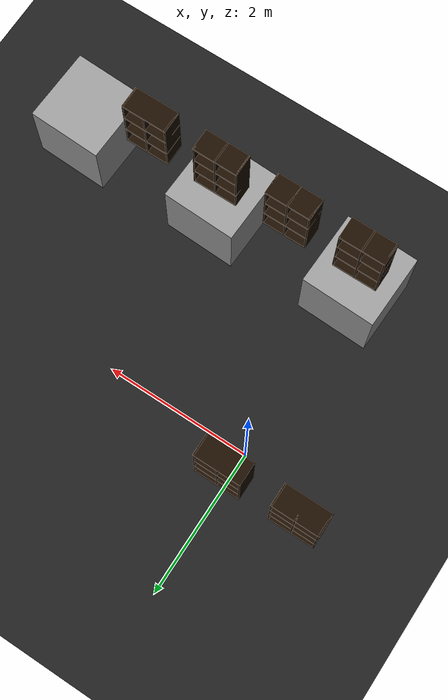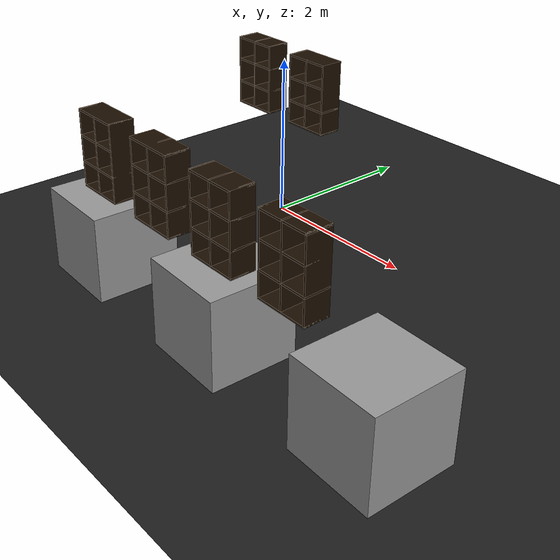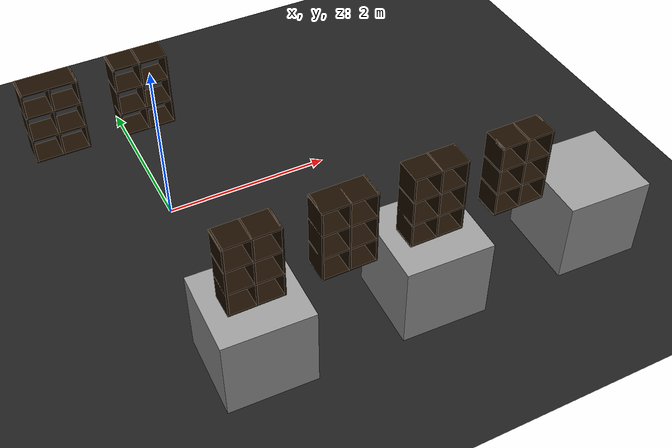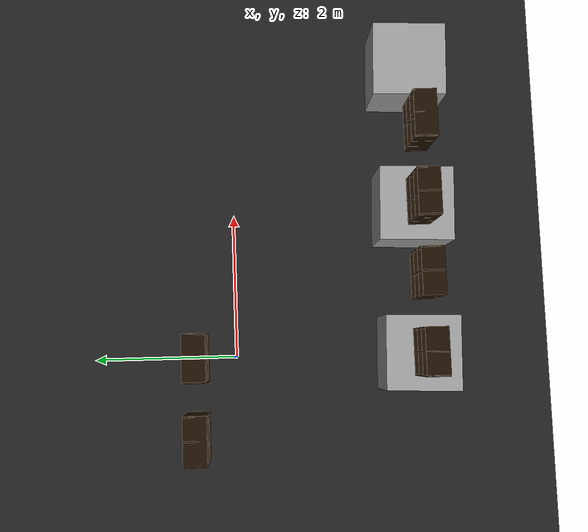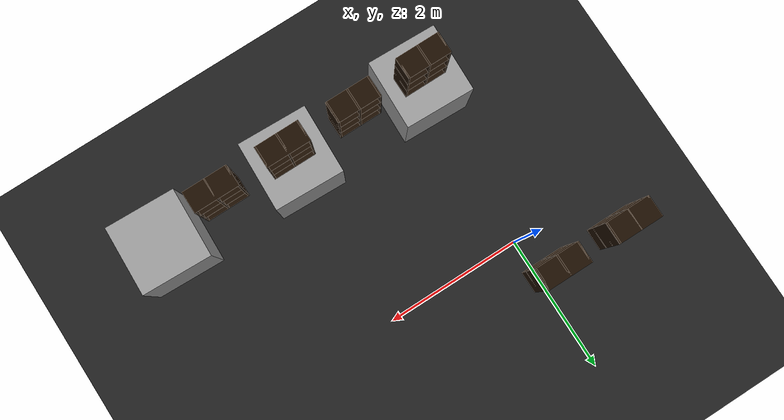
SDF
<sdf version="1.7">
 <world name="default">
  <model name="ground_plane">
   <static>1</static>
   <link name="link">
    <collision name="collision">
     <geometry><plane><normal>0 0 1</normal><size>100 100</size></plane></geometry>
     <surface><friction><ode><mu>100</mu><mu2>50</mu2></ode></friction></surface>
    </collision>
    <visual name="visual">
     <cast_shadows>0</cast_shadows>
     <geometry><plane><normal>0 0 1</normal><size>100 100</size></plane></geometry>
     <material>
      <script><uri>file://media/materials/scripts/gazebo.material</uri><name>Gazebo/BlackTransparent</name></script>
     </material>
    </visual>
   </link>
  </model>
  <model name="unit_box_24">
   <pose>-0.012698 -2.48702 0.5 0 0 -0.031078</pose>
   <link name="link">
    <inertial>
     <mass>1</mass>
     <inertia>
      <ixx>0.166667</ixx>
      <ixy>0</ixy>
      <ixz>0</ixz>
      <iyy>0.166667</iyy>
      <iyz>0</iyz>
      <izz>0.166667</izz>
     </inertia>
    </inertial>
    <collision name="collision"><geometry><box><size>1 1 1</size></box></geometry></collision>
    <visual name="visual">
     <geometry><box><size>1 1 1</size></box></geometry>
     <material>
      <script><name>Gazebo/Grey</name><uri>file://media/materials/scripts/gazebo.material</uri></script>
     </material>
    </visual>
   </link>
  </model>
  <model name="unit_box_25">
   <pose>1.99148 -2.49024 0.5 0 0 -0.034578</pose>
   <link name="link">
    <inertial>
     <mass>1</mass>
     <inertia>
      <ixx>0.166667</ixx>
      <ixy>0</ixy>
      <ixz>0</ixz>
      <iyy>0.166667</iyy>
      <iyz>0</iyz>
      <izz>0.166667</izz>
     </inertia>
    </inertial>
    <collision name="collision"><geometry><box><size>1 1 1</size></box></geometry></collision>
    <visual name="visual">
     <geometry><box><size>1 1 1</size></box></geometry>
     <material>
      <script><name>Gazebo/Grey</name><uri>file://media/materials/scripts/gazebo.material</uri></script>
     </material>
    </visual>
   </link>
  </model>
  <model name="unit_box_26">
   <pose>3.99339 -2.48181 0.5 0 0 -0.034708</pose>
   <link name="link">
    <inertial>
     <mass>1</mass>
     <inertia>
      <ixx>0.166667</ixx>
      <ixy>0</ixy>
      <ixz>0</ixz>
      <iyy>0.166667</iyy>
      <iyz>0</iyz>
      <izz>0.166667</izz>
     </inertia>
    </inertial>
    <collision name="collision"><geometry><box><size>1 1 1</size></box></geometry></collision>
    <visual name="visual">
     <geometry><box><size>1 1 1</size></box></geometry>
     <material>
      <script><name>Gazebo/Grey</name><uri>file://media/materials/scripts/gazebo.material</uri></script>
     </material>
    </visual>
   </link>
  </model>
  <model name="6_Cube_StorageE_clone_34">
   <link name="Wall_0">
    <pose>0 0 0.01 0 -0 0</pose>
    <inertial>
     <mass>1.6201</mass>
     <inertia><ixx>0.0119</ixx><iyy>0.0631</iyy><izz>0.0513</izz><ixy>0</ixy><ixz>0</ixz><iyz>0</iyz></inertia>
    </inertial>
    <collision name="Wall_0_Collision"><geometry><box><size>0.616 0.296 0.02</size></box></geometry></collision>
    <visual name="Wall_0_Visual">
     <geometry><box><size>0.616 0.296 0.02</size></box></geometry>
     <material>
      <script><uri>file://media/materials/scripts/gazebo.material</uri><name>Gazebo/Grey</name></script>
      <ambient>0.105882 0.0509804 0 1</ambient>
     </material>
    </visual>
   </link>
   <joint name="0_2" type="fixed">
    <pose>-0.308 0 0 0 -0 0</pose>
    <parent>Wall_2</parent>
    <child>Wall_0</child>
    <axis><xyz>1 0 0</xyz><limit><lower>-1e+16</lower><upper>1e+16</upper></limit></axis>
   </joint>
   <joint name="0_12" type="fixed">
    <parent>Wall_12</parent>
    <child>Wall_0</child>
    <axis><xyz>0 0 1</xyz><limit><lower>-1e+16</lower><upper>1e+16</upper></limit></axis>
   </joint>
   <joint name="0_4" type="fixed">
    <pose>0.308 0 0 0 -0 0</pose>
    <parent>Wall_4</parent>
    <child>Wall_0</child>
    <axis><xyz>1 0 0</xyz><limit><lower>-1e+16</lower><upper>1e+16</upper></limit></axis>
   </joint>
   <link name="Wall_10">
    <pose>0 0 0.61 0 -0 0</pose>
    <inertial>
     <mass>1.6201</mass>
     <inertia><ixx>0.0119</ixx><iyy>0.0631</iyy><izz>0.0513</izz><ixy>0</ixy><ixz>0</ixz><iyz>0</iyz></inertia>
    </inertial>
    <collision name="Wall_10_Collision"><geometry><box><size>0.616 0.296 0.02</size></box></geometry></collision>
    <visual name="Wall_10_Visual">
     <geometry><box><size>0.616 0.296 0.02</size></box></geometry>
     <material>
      <script><uri>file://media/materials/scripts/gazebo.material</uri><name>Gazebo/Grey</name></script>
      <ambient>0.105882 0.0509804 0 1</ambient>
     </material>
    </visual>
   </link>
   <joint name="10_2" type="fixed">
    <pose>-0.308 0 0 0 -0 0</pose>
    <parent>Wall_2</parent>
    <child>Wall_10</child>
    <axis><xyz>1 0 0</xyz><limit><lower>-1e+16</lower><upper>1e+16</upper></limit></axis>
   </joint>
   <joint name="10_12" type="fixed">
    <parent>Wall_12</parent>
    <child>Wall_10</child>
    <axis><xyz>0 0 1</xyz><limit><lower>-1e+16</lower><upper>1e+16</upper></limit></axis>
   </joint>
   <joint name="10_4" type="fixed">
    <pose>0.308 0 0 0 -0 0</pose>
    <parent>Wall_4</parent>
    <child>Wall_10</child>
    <axis><xyz>1 0 0</xyz><limit><lower>-1e+16</lower><upper>1e+16</upper></limit></axis>
   </joint>
   <link name="Wall_12">
    <pose>0 0 0.4575 0 -0 0</pose>
    <inertial>
     <mass>2.4065</mass>
     <inertia><ixx>0.0177</ixx><iyy>0.1855</iyy><izz>0.168</izz><ixy>0</ixy><ixz>0</ixz><iyz>0</iyz></inertia>
    </inertial>
    <collision name="Wall_12_Collision"><geometry><box><size>0.02 0.296 0.915</size></box></geometry></collision>
    <visual name="Wall_12_Visual">
     <geometry><box><size>0.02 0.296 0.915</size></box></geometry>
     <material>
      <script><uri>file://media/materials/scripts/gazebo.material</uri><name>Gazebo/Grey</name></script>
      <ambient>0.105882 0.0509804 0 1</ambient>
     </material>
    </visual>
   </link>
   <link name="Wall_2">
    <pose>-0.298 0 0.4575 0 -0 0</pose>
    <inertial>
     <mass>2.4065</mass>
     <inertia><ixx>0.0177</ixx><iyy>0.1855</iyy><izz>0.168</izz><ixy>0</ixy><ixz>0</ixz><iyz>0</iyz></inertia>
    </inertial>
    <collision name="Wall_2_Collision"><geometry><box><size>0.02 0.296 0.915</size></box></geometry></collision>
    <visual name="Wall_2_Visual">
     <geometry><box><size>0.02 0.296 0.915</size></box></geometry>
     <material>
      <script><uri>file://media/materials/scripts/gazebo.material</uri><name>Gazebo/Grey</name></script>
      <ambient>0.105882 0.0509804 0 1</ambient>
     </material>
    </visual>
   </link>
   <link name="Wall_4">
    <pose>0.298 0 0.4575 0 -0 0</pose>
    <inertial>
     <mass>2.4065</mass>
     <inertia><ixx>0.0177</ixx><iyy>0.1855</iyy><izz>0.168</izz><ixy>0</ixy><ixz>0</ixz><iyz>0</iyz></inertia>
    </inertial>
    <collision name="Wall_4_Collision"><geometry><box><size>0.02 0.296 0.915</size></box></geometry></collision>
    <visual name="Wall_4_Visual">
     <geometry><box><size>0.02 0.296 0.915</size></box></geometry>
     <material>
      <script><uri>file://media/materials/scripts/gazebo.material</uri><name>Gazebo/Grey</name></script>
      <ambient>0.105882 0.0509804 0 1</ambient>
     </material>
    </visual>
   </link>
   <link name="Wall_6">
    <pose>0 0 0.905 0 -0 0</pose>
    <inertial>
     <mass>1.6201</mass>
     <inertia><ixx>0.0119</ixx><iyy>0.0631</iyy><izz>0.0513</izz><ixy>0</ixy><ixz>0</ixz><iyz>0</iyz></inertia>
    </inertial>
    <collision name="Wall_6_Collision"><geometry><box><size>0.616 0.296 0.02</size></box></geometry></collision>
    <visual name="Wall_6_Visual">
     <geometry><box><size>0.616 0.296 0.02</size></box></geometry>
     <material>
      <script><uri>file://media/materials/scripts/gazebo.material</uri><name>Gazebo/Grey</name></script>
      <ambient>0.105882 0.0509804 0 1</ambient>
     </material>
    </visual>
   </link>
   <joint name="6_2" type="fixed">
    <pose>-0.308 0 0 0 -0 0</pose>
    <parent>Wall_2</parent>
    <child>Wall_6</child>
    <axis><xyz>2 0 0</xyz><limit><lower>-1e+16</lower><upper>1e+16</upper></limit></axis>
   </joint>
   <joint name="6_12" type="fixed">
    <parent>Wall_12</parent>
    <child>Wall_6</child>
    <axis><xyz>0 0 1</xyz><limit><lower>-1e+16</lower><upper>1e+16</upper></limit></axis>
   </joint>
   <joint name="6_4" type="fixed">
    <pose>0.308 0 0 0 -0 0</pose>
    <parent>Wall_4</parent>
    <child>Wall_6</child>
    <axis><xyz>1 0 0</xyz><limit><lower>-1e+16</lower><upper>1e+16</upper></limit></axis>
   </joint>
   <link name="Wall_8">
    <pose>0 0 0.305 0 -0 0</pose>
    <inertial>
     <mass>1.6201</mass>
     <inertia><ixx>0.0119</ixx><iyy>0.0631</iyy><izz>0.0513</izz><ixy>0</ixy><ixz>0</ixz><iyz>0</iyz></inertia>
    </inertial>
    <collision name="Wall_8_Collision"><geometry><box><size>0.616 0.296 0.02</size></box></geometry></collision>
    <visual name="Wall_8_Visual">
     <geometry><box><size>0.616 0.296 0.02</size></box></geometry>
     <material>
      <script><uri>file://media/materials/scripts/gazebo.material</uri><name>Gazebo/Grey</name></script>
      <ambient>0.105882 0.0509804 0 1</ambient>
     </material>
    </visual>
   </link>
   <joint name="8_2" type="fixed">
    <pose>-0.308 0 0 0 -0 0</pose>
    <parent>Wall_2</parent>
    <child>Wall_8</child>
    <axis><xyz>1 0 0</xyz><limit><lower>-1e+16</lower><upper>1e+16</upper></limit></axis>
   </joint>
   <joint name="8_12" type="fixed">
    <parent>Wall_12</parent>
    <child>Wall_8</child>
    <axis><xyz>0 0 1</xyz><limit><lower>-1e+16</lower><upper>1e+16</upper></limit></axis>
   </joint>
   <joint name="8_4" type="fixed">
    <pose>0.308 0 0 0 -0 0</pose>
    <parent>Wall_4</parent>
    <child>Wall_8</child>
    <axis><xyz>1 0 0</xyz><limit><lower>-1e+16</lower><upper>1e+16</upper></limit></axis>
   </joint>
   <static>1</static>
   <pose>-1 0.5 1.01 0 -0 0</pose>
  </model>
  <model name="6_Cube_StorageE_clone_35">
   <link name="Wall_0">
    <pose>0 0 0.01 0 -0 0</pose>
    <inertial>
     <mass>1.6201</mass>
     <inertia><ixx>0.0119</ixx><iyy>0.0631</iyy><izz>0.0513</izz><ixy>0</ixy><ixz>0</ixz><iyz>0</iyz></inertia>
    </inertial>
    <collision name="Wall_0_Collision"><geometry><box><size>0.616 0.296 0.02</size></box></geometry></collision>
    <visual name="Wall_0_Visual">
     <geometry><box><size>0.616 0.296 0.02</size></box></geometry>
     <material>
      <script><uri>file://media/materials/scripts/gazebo.material</uri><name>Gazebo/Grey</name></script>
      <ambient>0.105882 0.0509804 0 1</ambient>
     </material>
    </visual>
   </link>
   <joint name="0_2" type="fixed">
    <pose>-0.308 0 0 0 -0 0</pose>
    <parent>Wall_2</parent>
    <child>Wall_0</child>
    <axis><xyz>1 0 0</xyz><limit><lower>-1e+16</lower><upper>1e+16</upper></limit></axis>
   </joint>
   <joint name="0_12" type="fixed">
    <parent>Wall_12</parent>
    <child>Wall_0</child>
    <axis><xyz>0 0 1</xyz><limit><lower>-1e+16</lower><upper>1e+16</upper></limit></axis>
   </joint>
   <joint name="0_4" type="fixed">
    <pose>0.308 0 0 0 -0 0</pose>
    <parent>Wall_4</parent>
    <child>Wall_0</child>
    <axis><xyz>1 0 0</xyz><limit><lower>-1e+16</lower><upper>1e+16</upper></limit></axis>
   </joint>
   <link name="Wall_10">
    <pose>0 0 0.61 0 -0 0</pose>
    <inertial>
     <mass>1.6201</mass>
     <inertia><ixx>0.0119</ixx><iyy>0.0631</iyy><izz>0.0513</izz><ixy>0</ixy><ixz>0</ixz><iyz>0</iyz></inertia>
    </inertial>
    <collision name="Wall_10_Collision"><geometry><box><size>0.616 0.296 0.02</size></box></geometry></collision>
    <visual name="Wall_10_Visual">
     <geometry><box><size>0.616 0.296 0.02</size></box></geometry>
     <material>
      <script><uri>file://media/materials/scripts/gazebo.material</uri><name>Gazebo/Grey</name></script>
      <ambient>0.105882 0.0509804 0 1</ambient>
     </material>
    </visual>
   </link>
   <joint name="10_2" type="fixed">
    <pose>-0.308 0 0 0 -0 0</pose>
    <parent>Wall_2</parent>
    <child>Wall_10</child>
    <axis><xyz>1 0 0</xyz><limit><lower>-1e+16</lower><upper>1e+16</upper></limit></axis>
   </joint>
   <joint name="10_12" type="fixed">
    <parent>Wall_12</parent>
    <child>Wall_10</child>
    <axis><xyz>0 0 1</xyz><limit><lower>-1e+16</lower><upper>1e+16</upper></limit></axis>
   </joint>
   <joint name="10_4" type="fixed">
    <pose>0.308 0 0 0 -0 0</pose>
    <parent>Wall_4</parent>
    <child>Wall_10</child>
    <axis><xyz>1 0 0</xyz><limit><lower>-1e+16</lower><upper>1e+16</upper></limit></axis>
   </joint>
   <link name="Wall_12">
    <pose>0 0 0.4575 0 -0 0</pose>
    <inertial>
     <mass>2.4065</mass>
     <inertia><ixx>0.0177</ixx><iyy>0.1855</iyy><izz>0.168</izz><ixy>0</ixy><ixz>0</ixz><iyz>0</iyz></inertia>
    </inertial>
    <collision name="Wall_12_Collision"><geometry><box><size>0.02 0.296 0.915</size></box></geometry></collision>
    <visual name="Wall_12_Visual">
     <geometry><box><size>0.02 0.296 0.915</size></box></geometry>
     <material>
      <script><uri>file://media/materials/scripts/gazebo.material</uri><name>Gazebo/Grey</name></script>
      <ambient>0.105882 0.0509804 0 1</ambient>
     </material>
    </visual>
   </link>
   <link name="Wall_2">
    <pose>-0.298 0 0.4575 0 -0 0</pose>
    <inertial>
     <mass>2.4065</mass>
     <inertia><ixx>0.0177</ixx><iyy>0.1855</iyy><izz>0.168</izz><ixy>0</ixy><ixz>0</ixz><iyz>0</iyz></inertia>
    </inertial>
    <collision name="Wall_2_Collision"><geometry><box><size>0.02 0.296 0.915</size></box></geometry></collision>
    <visual name="Wall_2_Visual">
     <geometry><box><size>0.02 0.296 0.915</size></box></geometry>
     <material>
      <script><uri>file://media/materials/scripts/gazebo.material</uri><name>Gazebo/Grey</name></script>
      <ambient>0.105882 0.0509804 0 1</ambient>
     </material>
    </visual>
   </link>
   <link name="Wall_4">
    <pose>0.298 0 0.4575 0 -0 0</pose>
    <inertial>
     <mass>2.4065</mass>
     <inertia><ixx>0.0177</ixx><iyy>0.1855</iyy><izz>0.168</izz><ixy>0</ixy><ixz>0</ixz><iyz>0</iyz></inertia>
    </inertial>
    <collision name="Wall_4_Collision"><geometry><box><size>0.02 0.296 0.915</size></box></geometry></collision>
    <visual name="Wall_4_Visual">
     <geometry><box><size>0.02 0.296 0.915</size></box></geometry>
     <material>
      <script><uri>file://media/materials/scripts/gazebo.material</uri><name>Gazebo/Grey</name></script>
      <ambient>0.105882 0.0509804 0 1</ambient>
     </material>
    </visual>
   </link>
   <link name="Wall_6">
    <pose>0 0 0.905 0 -0 0</pose>
    <inertial>
     <mass>1.6201</mass>
     <inertia><ixx>0.0119</ixx><iyy>0.0631</iyy><izz>0.0513</izz><ixy>0</ixy><ixz>0</ixz><iyz>0</iyz></inertia>
    </inertial>
    <collision name="Wall_6_Collision"><geometry><box><size>0.616 0.296 0.02</size></box></geometry></collision>
    <visual name="Wall_6_Visual">
     <geometry><box><size>0.616 0.296 0.02</size></box></geometry>
     <material>
      <script><uri>file://media/materials/scripts/gazebo.material</uri><name>Gazebo/Grey</name></script>
      <ambient>0.105882 0.0509804 0 1</ambient>
     </material>
    </visual>
   </link>
   <joint name="6_2" type="fixed">
    <pose>-0.308 0 0 0 -0 0</pose>
    <parent>Wall_2</parent>
    <child>Wall_6</child>
    <axis><xyz>2 0 0</xyz><limit><lower>-1e+16</lower><upper>1e+16</upper></limit></axis>
   </joint>
   <joint name="6_12" type="fixed">
    <parent>Wall_12</parent>
    <child>Wall_6</child>
    <axis><xyz>0 0 1</xyz><limit><lower>-1e+16</lower><upper>1e+16</upper></limit></axis>
   </joint>
   <joint name="6_4" type="fixed">
    <pose>0.308 0 0 0 -0 0</pose>
    <parent>Wall_4</parent>
    <child>Wall_6</child>
    <axis><xyz>1 0 0</xyz><limit><lower>-1e+16</lower><upper>1e+16</upper></limit></axis>
   </joint>
   <link name="Wall_8">
    <pose>0 0 0.305 0 -0 0</pose>
    <inertial>
     <mass>1.6201</mass>
     <inertia><ixx>0.0119</ixx><iyy>0.0631</iyy><izz>0.0513</izz><ixy>0</ixy><ixz>0</ixz><iyz>0</iyz></inertia>
    </inertial>
    <collision name="Wall_8_Collision"><geometry><box><size>0.616 0.296 0.02</size></box></geometry></collision>
    <visual name="Wall_8_Visual">
     <geometry><box><size>0.616 0.296 0.02</size></box></geometry>
     <material>
      <script><uri>file://media/materials/scripts/gazebo.material</uri><name>Gazebo/Grey</name></script>
      <ambient>0.105882 0.0509804 0 1</ambient>
     </material>
    </visual>
   </link>
   <joint name="8_2" type="fixed">
    <pose>-0.308 0 0 0 -0 0</pose>
    <parent>Wall_2</parent>
    <child>Wall_8</child>
    <axis><xyz>1 0 0</xyz><limit><lower>-1e+16</lower><upper>1e+16</upper></limit></axis>
   </joint>
   <joint name="8_12" type="fixed">
    <parent>Wall_12</parent>
    <child>Wall_8</child>
    <axis><xyz>0 0 1</xyz><limit><lower>-1e+16</lower><upper>1e+16</upper></limit></axis>
   </joint>
   <joint name="8_4" type="fixed">
    <pose>0.308 0 0 0 -0 0</pose>
    <parent>Wall_4</parent>
    <child>Wall_8</child>
    <axis><xyz>1 0 0</xyz><limit><lower>-1e+16</lower><upper>1e+16</upper></limit></axis>
   </joint>
   <static>1</static>
   <pose>0 0.5 1.01 0 -0 0</pose>
  </model>
  <model name="6_Cube_StorageE_clone_47">
   <link name="Wall_0">
    <pose>0 0 0.01 0 -0 0</pose>
    <inertial>
     <mass>1.6201</mass>
     <inertia><ixx>0.0119</ixx><iyy>0.0631</iyy><izz>0.0513</izz><ixy>0</ixy><ixz>0</ixz><iyz>0</iyz></inertia>
    </inertial>
    <collision name="Wall_0_Collision"><geometry><box><size>0.616 0.296 0.02</size></box></geometry></collision>
    <visual name="Wall_0_Visual">
     <geometry><box><size>0.616 0.296 0.02</size></box></geometry>
     <material>
      <script><uri>file://media/materials/scripts/gazebo.material</uri><name>Gazebo/Grey</name></script>
      <ambient>0.105882 0.0509804 0 1</ambient>
     </material>
    </visual>
   </link>
   <joint name="0_2" type="fixed">
    <pose>-0.308 0 0 0 -0 0</pose>
    <parent>Wall_2</parent>
    <child>Wall_0</child>
    <axis><xyz>1 0 0</xyz><limit><lower>-1e+16</lower><upper>1e+16</upper></limit></axis>
   </joint>
   <joint name="0_12" type="fixed">
    <parent>Wall_12</parent>
    <child>Wall_0</child>
    <axis><xyz>0 0 1</xyz><limit><lower>-1e+16</lower><upper>1e+16</upper></limit></axis>
   </joint>
   <joint name="0_4" type="fixed">
    <pose>0.308 0 0 0 -0 0</pose>
    <parent>Wall_4</parent>
    <child>Wall_0</child>
    <axis><xyz>1 0 0</xyz><limit><lower>-1e+16</lower><upper>1e+16</upper></limit></axis>
   </joint>
   <link name="Wall_10">
    <pose>0 0 0.61 0 -0 0</pose>
    <inertial>
     <mass>1.6201</mass>
     <inertia><ixx>0.0119</ixx><iyy>0.0631</iyy><izz>0.0513</izz><ixy>0</ixy><ixz>0</ixz><iyz>0</iyz></inertia>
    </inertial>
    <collision name="Wall_10_Collision"><geometry><box><size>0.616 0.296 0.02</size></box></geometry></collision>
    <visual name="Wall_10_Visual">
     <geometry><box><size>0.616 0.296 0.02</size></box></geometry>
     <material>
      <script><uri>file://media/materials/scripts/gazebo.material</uri><name>Gazebo/Grey</name></script>
      <ambient>0.105882 0.0509804 0 1</ambient>
     </material>
    </visual>
   </link>
   <joint name="10_2" type="fixed">
    <pose>-0.308 0 0 0 -0 0</pose>
    <parent>Wall_2</parent>
    <child>Wall_10</child>
    <axis><xyz>1 0 0</xyz><limit><lower>-1e+16</lower><upper>1e+16</upper></limit></axis>
   </joint>
   <joint name="10_12" type="fixed">
    <parent>Wall_12</parent>
    <child>Wall_10</child>
    <axis><xyz>0 0 1</xyz><limit><lower>-1e+16</lower><upper>1e+16</upper></limit></axis>
   </joint>
   <joint name="10_4" type="fixed">
    <pose>0.308 0 0 0 -0 0</pose>
    <parent>Wall_4</parent>
    <child>Wall_10</child>
    <axis><xyz>1 0 0</xyz><limit><lower>-1e+16</lower><upper>1e+16</upper></limit></axis>
   </joint>
   <link name="Wall_12">
    <pose>0 0 0.4575 0 -0 0</pose>
    <inertial>
     <mass>2.4065</mass>
     <inertia><ixx>0.0177</ixx><iyy>0.1855</iyy><izz>0.168</izz><ixy>0</ixy><ixz>0</ixz><iyz>0</iyz></inertia>
    </inertial>
    <collision name="Wall_12_Collision"><geometry><box><size>0.02 0.296 0.915</size></box></geometry></collision>
    <visual name="Wall_12_Visual">
     <geometry><box><size>0.02 0.296 0.915</size></box></geometry>
     <material>
      <script><uri>file://media/materials/scripts/gazebo.material</uri><name>Gazebo/Grey</name></script>
      <ambient>0.105882 0.0509804 0 1</ambient>
     </material>
    </visual>
   </link>
   <link name="Wall_2">
    <pose>-0.298 0 0.4575 0 -0 0</pose>
    <inertial>
     <mass>2.4065</mass>
     <inertia><ixx>0.0177</ixx><iyy>0.1855</iyy><izz>0.168</izz><ixy>0</ixy><ixz>0</ixz><iyz>0</iyz></inertia>
    </inertial>
    <collision name="Wall_2_Collision"><geometry><box><size>0.02 0.296 0.915</size></box></geometry></collision>
    <visual name="Wall_2_Visual">
     <geometry><box><size>0.02 0.296 0.915</size></box></geometry>
     <material>
      <script><uri>file://media/materials/scripts/gazebo.material</uri><name>Gazebo/Grey</name></script>
      <ambient>0.105882 0.0509804 0 1</ambient>
     </material>
    </visual>
   </link>
   <link name="Wall_4">
    <pose>0.298 0 0.4575 0 -0 0</pose>
    <inertial>
     <mass>2.4065</mass>
     <inertia><ixx>0.0177</ixx><iyy>0.1855</iyy><izz>0.168</izz><ixy>0</ixy><ixz>0</ixz><iyz>0</iyz></inertia>
    </inertial>
    <collision name="Wall_4_Collision"><geometry><box><size>0.02 0.296 0.915</size></box></geometry></collision>
    <visual name="Wall_4_Visual">
     <geometry><box><size>0.02 0.296 0.915</size></box></geometry>
     <material>
      <script><uri>file://media/materials/scripts/gazebo.material</uri><name>Gazebo/Grey</name></script>
      <ambient>0.105882 0.0509804 0 1</ambient>
     </material>
    </visual>
   </link>
   <link name="Wall_6">
    <pose>0 0 0.905 0 -0 0</pose>
    <inertial>
     <mass>1.6201</mass>
     <inertia><ixx>0.0119</ixx><iyy>0.0631</iyy><izz>0.0513</izz><ixy>0</ixy><ixz>0</ixz><iyz>0</iyz></inertia>
    </inertial>
    <collision name="Wall_6_Collision"><geometry><box><size>0.616 0.296 0.02</size></box></geometry></collision>
    <visual name="Wall_6_Visual">
     <geometry><box><size>0.616 0.296 0.02</size></box></geometry>
     <material>
      <script><uri>file://media/materials/scripts/gazebo.material</uri><name>Gazebo/Grey</name></script>
      <ambient>0.105882 0.0509804 0 1</ambient>
     </material>
    </visual>
   </link>
   <joint name="6_2" type="fixed">
    <pose>-0.308 0 0 0 -0 0</pose>
    <parent>Wall_2</parent>
    <child>Wall_6</child>
    <axis><xyz>2 0 0</xyz><limit><lower>-1e+16</lower><upper>1e+16</upper></limit></axis>
   </joint>
   <joint name="6_12" type="fixed">
    <parent>Wall_12</parent>
    <child>Wall_6</child>
    <axis><xyz>0 0 1</xyz><limit><lower>-1e+16</lower><upper>1e+16</upper></limit></axis>
   </joint>
   <joint name="6_4" type="fixed">
    <pose>0.308 0 0 0 -0 0</pose>
    <parent>Wall_4</parent>
    <child>Wall_6</child>
    <axis><xyz>1 0 0</xyz><limit><lower>-1e+16</lower><upper>1e+16</upper></limit></axis>
   </joint>
   <link name="Wall_8">
    <pose>0 0 0.305 0 -0 0</pose>
    <inertial>
     <mass>1.6201</mass>
     <inertia><ixx>0.0119</ixx><iyy>0.0631</iyy><izz>0.0513</izz><ixy>0</ixy><ixz>0</ixz><iyz>0</iyz></inertia>
    </inertial>
    <collision name="Wall_8_Collision"><geometry><box><size>0.616 0.296 0.02</size></box></geometry></collision>
    <visual name="Wall_8_Visual">
     <geometry><box><size>0.616 0.296 0.02</size></box></geometry>
     <material>
      <script><uri>file://media/materials/scripts/gazebo.material</uri><name>Gazebo/Grey</name></script>
      <ambient>0.105882 0.0509804 0 1</ambient>
     </material>
    </visual>
   </link>
   <joint name="8_2" type="fixed">
    <pose>-0.308 0 0 0 -0 0</pose>
    <parent>Wall_2</parent>
    <child>Wall_8</child>
    <axis><xyz>1 0 0</xyz><limit><lower>-1e+16</lower><upper>1e+16</upper></limit></axis>
   </joint>
   <joint name="8_12" type="fixed">
    <parent>Wall_12</parent>
    <child>Wall_8</child>
    <axis><xyz>0 0 1</xyz><limit><lower>-1e+16</lower><upper>1e+16</upper></limit></axis>
   </joint>
   <joint name="8_4" type="fixed">
    <pose>0.308 0 0 0 -0 0</pose>
    <parent>Wall_4</parent>
    <child>Wall_8</child>
    <axis><xyz>1 0 0</xyz><limit><lower>-1e+16</lower><upper>1e+16</upper></limit></axis>
   </joint>
   <static>1</static>
   <pose>3 -2.5 1.01 0 -0 0</pose>
  </model>
  <model name="6_Cube_StorageE_clone_48">
   <link name="Wall_0">
    <pose>0 0 0.01 0 -0 0</pose>
    <inertial>
     <mass>1.6201</mass>
     <inertia><ixx>0.0119</ixx><iyy>0.0631</iyy><izz>0.0513</izz><ixy>0</ixy><ixz>0</ixz><iyz>0</iyz></inertia>
    </inertial>
    <collision name="Wall_0_Collision"><geometry><box><size>0.616 0.296 0.02</size></box></geometry></collision>
    <visual name="Wall_0_Visual">
     <geometry><box><size>0.616 0.296 0.02</size></box></geometry>
     <material>
      <script><uri>file://media/materials/scripts/gazebo.material</uri><name>Gazebo/Grey</name></script>
      <ambient>0.105882 0.0509804 0 1</ambient>
     </material>
    </visual>
   </link>
   <joint name="0_2" type="fixed">
    <pose>-0.308 0 0 0 -0 0</pose>
    <parent>Wall_2</parent>
    <child>Wall_0</child>
    <axis><xyz>1 0 0</xyz><limit><lower>-1e+16</lower><upper>1e+16</upper></limit></axis>
   </joint>
   <joint name="0_12" type="fixed">
    <parent>Wall_12</parent>
    <child>Wall_0</child>
    <axis><xyz>0 0 1</xyz><limit><lower>-1e+16</lower><upper>1e+16</upper></limit></axis>
   </joint>
   <joint name="0_4" type="fixed">
    <pose>0.308 0 0 0 -0 0</pose>
    <parent>Wall_4</parent>
    <child>Wall_0</child>
    <axis><xyz>1 0 0</xyz><limit><lower>-1e+16</lower><upper>1e+16</upper></limit></axis>
   </joint>
   <link name="Wall_10">
    <pose>0 0 0.61 0 -0 0</pose>
    <inertial>
     <mass>1.6201</mass>
     <inertia><ixx>0.0119</ixx><iyy>0.0631</iyy><izz>0.0513</izz><ixy>0</ixy><ixz>0</ixz><iyz>0</iyz></inertia>
    </inertial>
    <collision name="Wall_10_Collision"><geometry><box><size>0.616 0.296 0.02</size></box></geometry></collision>
    <visual name="Wall_10_Visual">
     <geometry><box><size>0.616 0.296 0.02</size></box></geometry>
     <material>
      <script><uri>file://media/materials/scripts/gazebo.material</uri><name>Gazebo/Grey</name></script>
      <ambient>0.105882 0.0509804 0 1</ambient>
     </material>
    </visual>
   </link>
   <joint name="10_2" type="fixed">
    <pose>-0.308 0 0 0 -0 0</pose>
    <parent>Wall_2</parent>
    <child>Wall_10</child>
    <axis><xyz>1 0 0</xyz><limit><lower>-1e+16</lower><upper>1e+16</upper></limit></axis>
   </joint>
   <joint name="10_12" type="fixed">
    <parent>Wall_12</parent>
    <child>Wall_10</child>
    <axis><xyz>0 0 1</xyz><limit><lower>-1e+16</lower><upper>1e+16</upper></limit></axis>
   </joint>
   <joint name="10_4" type="fixed">
    <pose>0.308 0 0 0 -0 0</pose>
    <parent>Wall_4</parent>
    <child>Wall_10</child>
    <axis><xyz>1 0 0</xyz><limit><lower>-1e+16</lower><upper>1e+16</upper></limit></axis>
   </joint>
   <link name="Wall_12">
    <pose>0 0 0.4575 0 -0 0</pose>
    <inertial>
     <mass>2.4065</mass>
     <inertia><ixx>0.0177</ixx><iyy>0.1855</iyy><izz>0.168</izz><ixy>0</ixy><ixz>0</ixz><iyz>0</iyz></inertia>
    </inertial>
    <collision name="Wall_12_Collision"><geometry><box><size>0.02 0.296 0.915</size></box></geometry></collision>
    <visual name="Wall_12_Visual">
     <geometry><box><size>0.02 0.296 0.915</size></box></geometry>
     <material>
      <script><uri>file://media/materials/scripts/gazebo.material</uri><name>Gazebo/Grey</name></script>
      <ambient>0.105882 0.0509804 0 1</ambient>
     </material>
    </visual>
   </link>
   <link name="Wall_2">
    <pose>-0.298 0 0.4575 0 -0 0</pose>
    <inertial>
     <mass>2.4065</mass>
     <inertia><ixx>0.0177</ixx><iyy>0.1855</iyy><izz>0.168</izz><ixy>0</ixy><ixz>0</ixz><iyz>0</iyz></inertia>
    </inertial>
    <collision name="Wall_2_Collision"><geometry><box><size>0.02 0.296 0.915</size></box></geometry></collision>
    <visual name="Wall_2_Visual">
     <geometry><box><size>0.02 0.296 0.915</size></box></geometry>
     <material>
      <script><uri>file://media/materials/scripts/gazebo.material</uri><name>Gazebo/Grey</name></script>
      <ambient>0.105882 0.0509804 0 1</ambient>
     </material>
    </visual>
   </link>
   <link name="Wall_4">
    <pose>0.298 0 0.4575 0 -0 0</pose>
    <inertial>
     <mass>2.4065</mass>
     <inertia><ixx>0.0177</ixx><iyy>0.1855</iyy><izz>0.168</izz><ixy>0</ixy><ixz>0</ixz><iyz>0</iyz></inertia>
    </inertial>
    <collision name="Wall_4_Collision"><geometry><box><size>0.02 0.296 0.915</size></box></geometry></collision>
    <visual name="Wall_4_Visual">
     <geometry><box><size>0.02 0.296 0.915</size></box></geometry>
     <material>
      <script><uri>file://media/materials/scripts/gazebo.material</uri><name>Gazebo/Grey</name></script>
      <ambient>0.105882 0.0509804 0 1</ambient>
     </material>
    </visual>
   </link>
   <link name="Wall_6">
    <pose>0 0 0.905 0 -0 0</pose>
    <inertial>
     <mass>1.6201</mass>
     <inertia><ixx>0.0119</ixx><iyy>0.0631</iyy><izz>0.0513</izz><ixy>0</ixy><ixz>0</ixz><iyz>0</iyz></inertia>
    </inertial>
    <collision name="Wall_6_Collision"><geometry><box><size>0.616 0.296 0.02</size></box></geometry></collision>
    <visual name="Wall_6_Visual">
     <geometry><box><size>0.616 0.296 0.02</size></box></geometry>
     <material>
      <script><uri>file://media/materials/scripts/gazebo.material</uri><name>Gazebo/Grey</name></script>
      <ambient>0.105882 0.0509804 0 1</ambient>
     </material>
    </visual>
   </link>
   <joint name="6_2" type="fixed">
    <pose>-0.308 0 0 0 -0 0</pose>
    <parent>Wall_2</parent>
    <child>Wall_6</child>
    <axis><xyz>2 0 0</xyz><limit><lower>-1e+16</lower><upper>1e+16</upper></limit></axis>
   </joint>
   <joint name="6_12" type="fixed">
    <parent>Wall_12</parent>
    <child>Wall_6</child>
    <axis><xyz>0 0 1</xyz><limit><lower>-1e+16</lower><upper>1e+16</upper></limit></axis>
   </joint>
   <joint name="6_4" type="fixed">
    <pose>0.308 0 0 0 -0 0</pose>
    <parent>Wall_4</parent>
    <child>Wall_6</child>
    <axis><xyz>1 0 0</xyz><limit><lower>-1e+16</lower><upper>1e+16</upper></limit></axis>
   </joint>
   <link name="Wall_8">
    <pose>0 0 0.305 0 -0 0</pose>
    <inertial>
     <mass>1.6201</mass>
     <inertia><ixx>0.0119</ixx><iyy>0.0631</iyy><izz>0.0513</izz><ixy>0</ixy><ixz>0</ixz><iyz>0</iyz></inertia>
    </inertial>
    <collision name="Wall_8_Collision"><geometry><box><size>0.616 0.296 0.02</size></box></geometry></collision>
    <visual name="Wall_8_Visual">
     <geometry><box><size>0.616 0.296 0.02</size></box></geometry>
     <material>
      <script><uri>file://media/materials/scripts/gazebo.material</uri><name>Gazebo/Grey</name></script>
      <ambient>0.105882 0.0509804 0 1</ambient>
     </material>
    </visual>
   </link>
   <joint name="8_2" type="fixed">
    <pose>-0.308 0 0 0 -0 0</pose>
    <parent>Wall_2</parent>
    <child>Wall_8</child>
    <axis><xyz>1 0 0</xyz><limit><lower>-1e+16</lower><upper>1e+16</upper></limit></axis>
   </joint>
   <joint name="8_12" type="fixed">
    <parent>Wall_12</parent>
    <child>Wall_8</child>
    <axis><xyz>0 0 1</xyz><limit><lower>-1e+16</lower><upper>1e+16</upper></limit></axis>
   </joint>
   <joint name="8_4" type="fixed">
    <pose>0.308 0 0 0 -0 0</pose>
    <parent>Wall_4</parent>
    <child>Wall_8</child>
    <axis><xyz>1 0 0</xyz><limit><lower>-1e+16</lower><upper>1e+16</upper></limit></axis>
   </joint>
   <static>1</static>
   <pose>2 -2.5 1.01 0 -0 0</pose>
  </model>
  <model name="6_Cube_StorageE_clone_49">
   <link name="Wall_0">
    <pose>0 0 0.01 0 -0 0</pose>
    <inertial>
     <mass>1.6201</mass>
     <inertia><ixx>0.0119</ixx><iyy>0.0631</iyy><izz>0.0513</izz><ixy>0</ixy><ixz>0</ixz><iyz>0</iyz></inertia>
    </inertial>
    <collision name="Wall_0_Collision"><geometry><box><size>0.616 0.296 0.02</size></box></geometry></collision>
    <visual name="Wall_0_Visual">
     <geometry><box><size>0.616 0.296 0.02</size></box></geometry>
     <material>
      <script><uri>file://media/materials/scripts/gazebo.material</uri><name>Gazebo/Grey</name></script>
      <ambient>0.105882 0.0509804 0 1</ambient>
     </material>
    </visual>
   </link>
   <joint name="0_2" type="fixed">
    <pose>-0.308 0 0 0 -0 0</pose>
    <parent>Wall_2</parent>
    <child>Wall_0</child>
    <axis><xyz>1 0 0</xyz><limit><lower>-1e+16</lower><upper>1e+16</upper></limit></axis>
   </joint>
   <joint name="0_12" type="fixed">
    <parent>Wall_12</parent>
    <child>Wall_0</child>
    <axis><xyz>0 0 1</xyz><limit><lower>-1e+16</lower><upper>1e+16</upper></limit></axis>
   </joint>
   <joint name="0_4" type="fixed">
    <pose>0.308 0 0 0 -0 0</pose>
    <parent>Wall_4</parent>
    <child>Wall_0</child>
    <axis><xyz>1 0 0</xyz><limit><lower>-1e+16</lower><upper>1e+16</upper></limit></axis>
   </joint>
   <link name="Wall_10">
    <pose>0 0 0.61 0 -0 0</pose>
    <inertial>
     <mass>1.6201</mass>
     <inertia><ixx>0.0119</ixx><iyy>0.0631</iyy><izz>0.0513</izz><ixy>0</ixy><ixz>0</ixz><iyz>0</iyz></inertia>
    </inertial>
    <collision name="Wall_10_Collision"><geometry><box><size>0.616 0.296 0.02</size></box></geometry></collision>
    <visual name="Wall_10_Visual">
     <geometry><box><size>0.616 0.296 0.02</size></box></geometry>
     <material>
      <script><uri>file://media/materials/scripts/gazebo.material</uri><name>Gazebo/Grey</name></script>
      <ambient>0.105882 0.0509804 0 1</ambient>
     </material>
    </visual>
   </link>
   <joint name="10_2" type="fixed">
    <pose>-0.308 0 0 0 -0 0</pose>
    <parent>Wall_2</parent>
    <child>Wall_10</child>
    <axis><xyz>1 0 0</xyz><limit><lower>-1e+16</lower><upper>1e+16</upper></limit></axis>
   </joint>
   <joint name="10_12" type="fixed">
    <parent>Wall_12</parent>
    <child>Wall_10</child>
    <axis><xyz>0 0 1</xyz><limit><lower>-1e+16</lower><upper>1e+16</upper></limit></axis>
   </joint>
   <joint name="10_4" type="fixed">
    <pose>0.308 0 0 0 -0 0</pose>
    <parent>Wall_4</parent>
    <child>Wall_10</child>
    <axis><xyz>1 0 0</xyz><limit><lower>-1e+16</lower><upper>1e+16</upper></limit></axis>
   </joint>
   <link name="Wall_12">
    <pose>0 0 0.4575 0 -0 0</pose>
    <inertial>
     <mass>2.4065</mass>
     <inertia><ixx>0.0177</ixx><iyy>0.1855</iyy><izz>0.168</izz><ixy>0</ixy><ixz>0</ixz><iyz>0</iyz></inertia>
    </inertial>
    <collision name="Wall_12_Collision"><geometry><box><size>0.02 0.296 0.915</size></box></geometry></collision>
    <visual name="Wall_12_Visual">
     <geometry><box><size>0.02 0.296 0.915</size></box></geometry>
     <material>
      <script><uri>file://media/materials/scripts/gazebo.material</uri><name>Gazebo/Grey</name></script>
      <ambient>0.105882 0.0509804 0 1</ambient>
     </material>
    </visual>
   </link>
   <link name="Wall_2">
    <pose>-0.298 0 0.4575 0 -0 0</pose>
    <inertial>
     <mass>2.4065</mass>
     <inertia><ixx>0.0177</ixx><iyy>0.1855</iyy><izz>0.168</izz><ixy>0</ixy><ixz>0</ixz><iyz>0</iyz></inertia>
    </inertial>
    <collision name="Wall_2_Collision"><geometry><box><size>0.02 0.296 0.915</size></box></geometry></collision>
    <visual name="Wall_2_Visual">
     <geometry><box><size>0.02 0.296 0.915</size></box></geometry>
     <material>
      <script><uri>file://media/materials/scripts/gazebo.material</uri><name>Gazebo/Grey</name></script>
      <ambient>0.105882 0.0509804 0 1</ambient>
     </material>
    </visual>
   </link>
   <link name="Wall_4">
    <pose>0.298 0 0.4575 0 -0 0</pose>
    <inertial>
     <mass>2.4065</mass>
     <inertia><ixx>0.0177</ixx><iyy>0.1855</iyy><izz>0.168</izz><ixy>0</ixy><ixz>0</ixz><iyz>0</iyz></inertia>
    </inertial>
    <collision name="Wall_4_Collision"><geometry><box><size>0.02 0.296 0.915</size></box></geometry></collision>
    <visual name="Wall_4_Visual">
     <geometry><box><size>0.02 0.296 0.915</size></box></geometry>
     <material>
      <script><uri>file://media/materials/scripts/gazebo.material</uri><name>Gazebo/Grey</name></script>
      <ambient>0.105882 0.0509804 0 1</ambient>
     </material>
    </visual>
   </link>
   <link name="Wall_6">
    <pose>0 0 0.905 0 -0 0</pose>
    <inertial>
     <mass>1.6201</mass>
     <inertia><ixx>0.0119</ixx><iyy>0.0631</iyy><izz>0.0513</izz><ixy>0</ixy><ixz>0</ixz><iyz>0</iyz></inertia>
    </inertial>
    <collision name="Wall_6_Collision"><geometry><box><size>0.616 0.296 0.02</size></box></geometry></collision>
    <visual name="Wall_6_Visual">
     <geometry><box><size>0.616 0.296 0.02</size></box></geometry>
     <material>
      <script><uri>file://media/materials/scripts/gazebo.material</uri><name>Gazebo/Grey</name></script>
      <ambient>0.105882 0.0509804 0 1</ambient>
     </material>
    </visual>
   </link>
   <joint name="6_2" type="fixed">
    <pose>-0.308 0 0 0 -0 0</pose>
    <parent>Wall_2</parent>
    <child>Wall_6</child>
    <axis><xyz>2 0 0</xyz><limit><lower>-1e+16</lower><upper>1e+16</upper></limit></axis>
   </joint>
   <joint name="6_12" type="fixed">
    <parent>Wall_12</parent>
    <child>Wall_6</child>
    <axis><xyz>0 0 1</xyz><limit><lower>-1e+16</lower><upper>1e+16</upper></limit></axis>
   </joint>
   <joint name="6_4" type="fixed">
    <pose>0.308 0 0 0 -0 0</pose>
    <parent>Wall_4</parent>
    <child>Wall_6</child>
    <axis><xyz>1 0 0</xyz><limit><lower>-1e+16</lower><upper>1e+16</upper></limit></axis>
   </joint>
   <link name="Wall_8">
    <pose>0 0 0.305 0 -0 0</pose>
    <inertial>
     <mass>1.6201</mass>
     <inertia><ixx>0.0119</ixx><iyy>0.0631</iyy><izz>0.0513</izz><ixy>0</ixy><ixz>0</ixz><iyz>0</iyz></inertia>
    </inertial>
    <collision name="Wall_8_Collision"><geometry><box><size>0.616 0.296 0.02</size></box></geometry></collision>
    <visual name="Wall_8_Visual">
     <geometry><box><size>0.616 0.296 0.02</size></box></geometry>
     <material>
      <script><uri>file://media/materials/scripts/gazebo.material</uri><name>Gazebo/Grey</name></script>
      <ambient>0.105882 0.0509804 0 1</ambient>
     </material>
    </visual>
   </link>
   <joint name="8_2" type="fixed">
    <pose>-0.308 0 0 0 -0 0</pose>
    <parent>Wall_2</parent>
    <child>Wall_8</child>
    <axis><xyz>1 0 0</xyz><limit><lower>-1e+16</lower><upper>1e+16</upper></limit></axis>
   </joint>
   <joint name="8_12" type="fixed">
    <parent>Wall_12</parent>
    <child>Wall_8</child>
    <axis><xyz>0 0 1</xyz><limit><lower>-1e+16</lower><upper>1e+16</upper></limit></axis>
   </joint>
   <joint name="8_4" type="fixed">
    <pose>0.308 0 0 0 -0 0</pose>
    <parent>Wall_4</parent>
    <child>Wall_8</child>
    <axis><xyz>1 0 0</xyz><limit><lower>-1e+16</lower><upper>1e+16</upper></limit></axis>
   </joint>
   <static>1</static>
   <pose>1 -2.5 1.01 0 -0 0</pose>
  </model>
  <model name="6_Cube_StorageE_clone_50">
   <link name="Wall_0">
    <pose>0 0 0.01 0 -0 0</pose>
    <inertial>
     <mass>1.6201</mass>
     <inertia><ixx>0.0119</ixx><iyy>0.0631</iyy><izz>0.0513</izz><ixy>0</ixy><ixz>0</ixz><iyz>0</iyz></inertia>
    </inertial>
    <collision name="Wall_0_Collision"><geometry><box><size>0.616 0.296 0.02</size></box></geometry></collision>
    <visual name="Wall_0_Visual">
     <geometry><box><size>0.616 0.296 0.02</size></box></geometry>
     <material>
      <script><uri>file://media/materials/scripts/gazebo.material</uri><name>Gazebo/Grey</name></script>
      <ambient>0.105882 0.0509804 0 1</ambient>
     </material>
    </visual>
   </link>
   <joint name="0_2" type="fixed">
    <pose>-0.308 0 0 0 -0 0</pose>
    <parent>Wall_2</parent>
    <child>Wall_0</child>
    <axis><xyz>1 0 0</xyz><limit><lower>-1e+16</lower><upper>1e+16</upper></limit></axis>
   </joint>
   <joint name="0_12" type="fixed">
    <parent>Wall_12</parent>
    <child>Wall_0</child>
    <axis><xyz>0 0 1</xyz><limit><lower>-1e+16</lower><upper>1e+16</upper></limit></axis>
   </joint>
   <joint name="0_4" type="fixed">
    <pose>0.308 0 0 0 -0 0</pose>
    <parent>Wall_4</parent>
    <child>Wall_0</child>
    <axis><xyz>1 0 0</xyz><limit><lower>-1e+16</lower><upper>1e+16</upper></limit></axis>
   </joint>
   <link name="Wall_10">
    <pose>0 0 0.61 0 -0 0</pose>
    <inertial>
     <mass>1.6201</mass>
     <inertia><ixx>0.0119</ixx><iyy>0.0631</iyy><izz>0.0513</izz><ixy>0</ixy><ixz>0</ixz><iyz>0</iyz></inertia>
    </inertial>
    <collision name="Wall_10_Collision"><geometry><box><size>0.616 0.296 0.02</size></box></geometry></collision>
    <visual name="Wall_10_Visual">
     <geometry><box><size>0.616 0.296 0.02</size></box></geometry>
     <material>
      <script><uri>file://media/materials/scripts/gazebo.material</uri><name>Gazebo/Grey</name></script>
      <ambient>0.105882 0.0509804 0 1</ambient>
     </material>
    </visual>
   </link>
   <joint name="10_2" type="fixed">
    <pose>-0.308 0 0 0 -0 0</pose>
    <parent>Wall_2</parent>
    <child>Wall_10</child>
    <axis><xyz>1 0 0</xyz><limit><lower>-1e+16</lower><upper>1e+16</upper></limit></axis>
   </joint>
   <joint name="10_12" type="fixed">
    <parent>Wall_12</parent>
    <child>Wall_10</child>
    <axis><xyz>0 0 1</xyz><limit><lower>-1e+16</lower><upper>1e+16</upper></limit></axis>
   </joint>
   <joint name="10_4" type="fixed">
    <pose>0.308 0 0 0 -0 0</pose>
    <parent>Wall_4</parent>
    <child>Wall_10</child>
    <axis><xyz>1 0 0</xyz><limit><lower>-1e+16</lower><upper>1e+16</upper></limit></axis>
   </joint>
   <link name="Wall_12">
    <pose>0 0 0.4575 0 -0 0</pose>
    <inertial>
     <mass>2.4065</mass>
     <inertia><ixx>0.0177</ixx><iyy>0.1855</iyy><izz>0.168</izz><ixy>0</ixy><ixz>0</ixz><iyz>0</iyz></inertia>
    </inertial>
    <collision name="Wall_12_Collision"><geometry><box><size>0.02 0.296 0.915</size></box></geometry></collision>
    <visual name="Wall_12_Visual">
     <geometry><box><size>0.02 0.296 0.915</size></box></geometry>
     <material>
      <script><uri>file://media/materials/scripts/gazebo.material</uri><name>Gazebo/Grey</name></script>
      <ambient>0.105882 0.0509804 0 1</ambient>
     </material>
    </visual>
   </link>
   <link name="Wall_2">
    <pose>-0.298 0 0.4575 0 -0 0</pose>
    <inertial>
     <mass>2.4065</mass>
     <inertia><ixx>0.0177</ixx><iyy>0.1855</iyy><izz>0.168</izz><ixy>0</ixy><ixz>0</ixz><iyz>0</iyz></inertia>
    </inertial>
    <collision name="Wall_2_Collision"><geometry><box><size>0.02 0.296 0.915</size></box></geometry></collision>
    <visual name="Wall_2_Visual">
     <geometry><box><size>0.02 0.296 0.915</size></box></geometry>
     <material>
      <script><uri>file://media/materials/scripts/gazebo.material</uri><name>Gazebo/Grey</name></script>
      <ambient>0.105882 0.0509804 0 1</ambient>
     </material>
    </visual>
   </link>
   <link name="Wall_4">
    <pose>0.298 0 0.4575 0 -0 0</pose>
    <inertial>
     <mass>2.4065</mass>
     <inertia><ixx>0.0177</ixx><iyy>0.1855</iyy><izz>0.168</izz><ixy>0</ixy><ixz>0</ixz><iyz>0</iyz></inertia>
    </inertial>
    <collision name="Wall_4_Collision"><geometry><box><size>0.02 0.296 0.915</size></box></geometry></collision>
    <visual name="Wall_4_Visual">
     <geometry><box><size>0.02 0.296 0.915</size></box></geometry>
     <material>
      <script><uri>file://media/materials/scripts/gazebo.material</uri><name>Gazebo/Grey</name></script>
      <ambient>0.105882 0.0509804 0 1</ambient>
     </material>
    </visual>
   </link>
   <link name="Wall_6">
    <pose>0 0 0.905 0 -0 0</pose>
    <inertial>
     <mass>1.6201</mass>
     <inertia><ixx>0.0119</ixx><iyy>0.0631</iyy><izz>0.0513</izz><ixy>0</ixy><ixz>0</ixz><iyz>0</iyz></inertia>
    </inertial>
    <collision name="Wall_6_Collision"><geometry><box><size>0.616 0.296 0.02</size></box></geometry></collision>
    <visual name="Wall_6_Visual">
     <geometry><box><size>0.616 0.296 0.02</size></box></geometry>
     <material>
      <script><uri>file://media/materials/scripts/gazebo.material</uri><name>Gazebo/Grey</name></script>
      <ambient>0.105882 0.0509804 0 1</ambient>
     </material>
    </visual>
   </link>
   <joint name="6_2" type="fixed">
    <pose>-0.308 0 0 0 -0 0</pose>
    <parent>Wall_2</parent>
    <child>Wall_6</child>
    <axis><xyz>2 0 0</xyz><limit><lower>-1e+16</lower><upper>1e+16</upper></limit></axis>
   </joint>
   <joint name="6_12" type="fixed">
    <parent>Wall_12</parent>
    <child>Wall_6</child>
    <axis><xyz>0 0 1</xyz><limit><lower>-1e+16</lower><upper>1e+16</upper></limit></axis>
   </joint>
   <joint name="6_4" type="fixed">
    <pose>0.308 0 0 0 -0 0</pose>
    <parent>Wall_4</parent>
    <child>Wall_6</child>
    <axis><xyz>1 0 0</xyz><limit><lower>-1e+16</lower><upper>1e+16</upper></limit></axis>
   </joint>
   <link name="Wall_8">
    <pose>0 0 0.305 0 -0 0</pose>
    <inertial>
     <mass>1.6201</mass>
     <inertia><ixx>0.0119</ixx><iyy>0.0631</iyy><izz>0.0513</izz><ixy>0</ixy><ixz>0</ixz><iyz>0</iyz></inertia>
    </inertial>
    <collision name="Wall_8_Collision"><geometry><box><size>0.616 0.296 0.02</size></box></geometry></collision>
    <visual name="Wall_8_Visual">
     <geometry><box><size>0.616 0.296 0.02</size></box></geometry>
     <material>
      <script><uri>file://media/materials/scripts/gazebo.material</uri><name>Gazebo/Grey</name></script>
      <ambient>0.105882 0.0509804 0 1</ambient>
     </material>
    </visual>
   </link>
   <joint name="8_2" type="fixed">
    <pose>-0.308 0 0 0 -0 0</pose>
    <parent>Wall_2</parent>
    <child>Wall_8</child>
    <axis><xyz>1 0 0</xyz><limit><lower>-1e+16</lower><upper>1e+16</upper></limit></axis>
   </joint>
   <joint name="8_12" type="fixed">
    <parent>Wall_12</parent>
    <child>Wall_8</child>
    <axis><xyz>0 0 1</xyz><limit><lower>-1e+16</lower><upper>1e+16</upper></limit></axis>
   </joint>
   <joint name="8_4" type="fixed">
    <pose>0.308 0 0 0 -0 0</pose>
    <parent>Wall_4</parent>
    <child>Wall_8</child>
    <axis><xyz>1 0 0</xyz><limit><lower>-1e+16</lower><upper>1e+16</upper></limit></axis>
   </joint>
   <static>1</static>
   <pose>0 -2.5 1.01 0 -0 0</pose>
  </model>
 </world>
</sdf>
